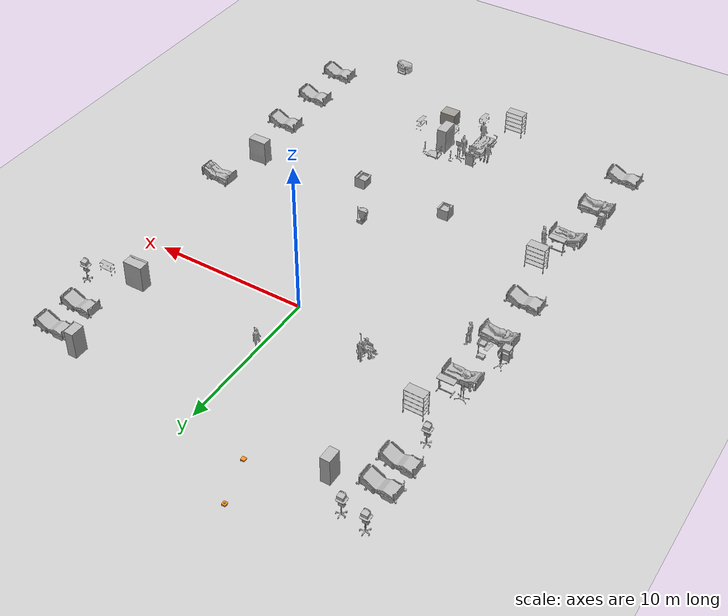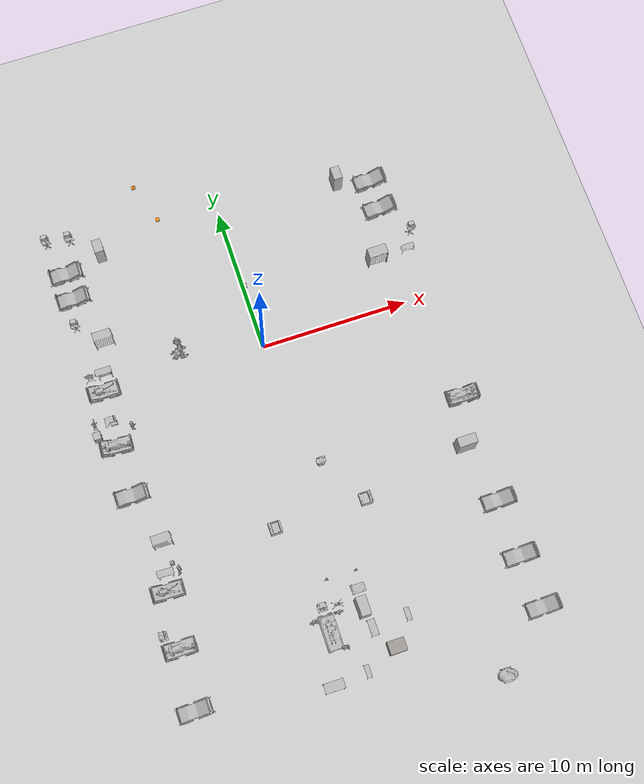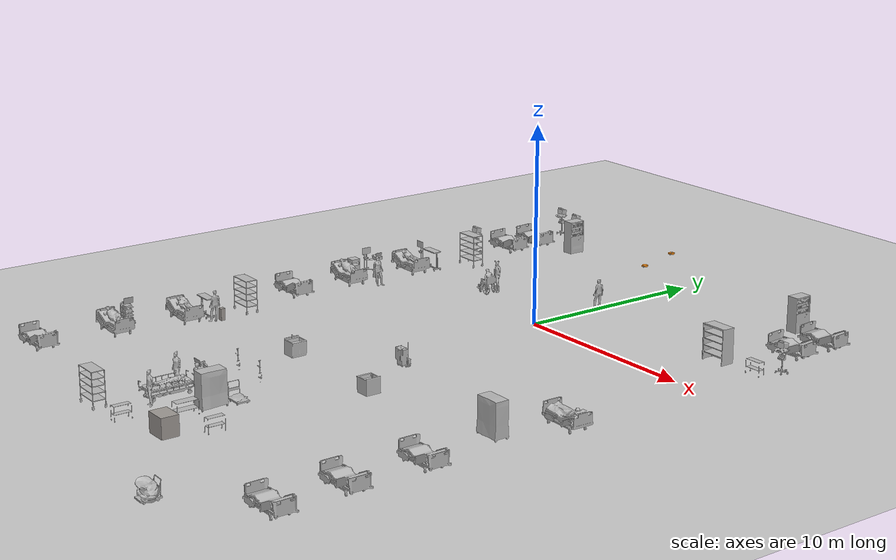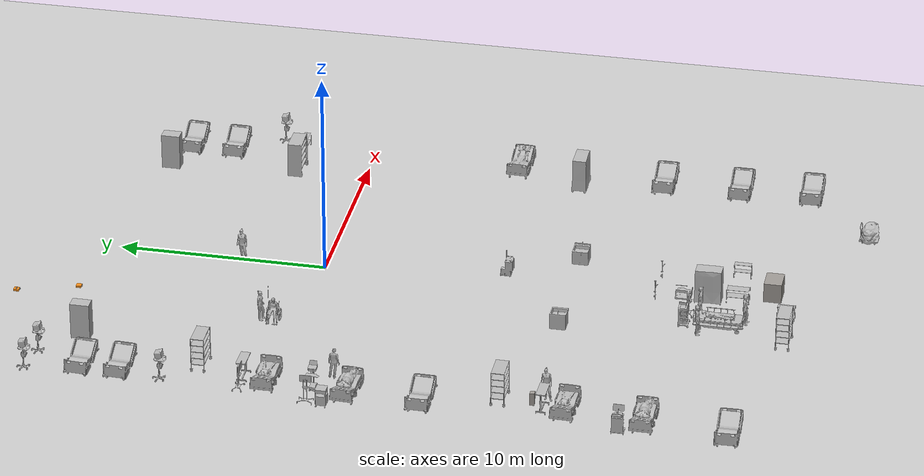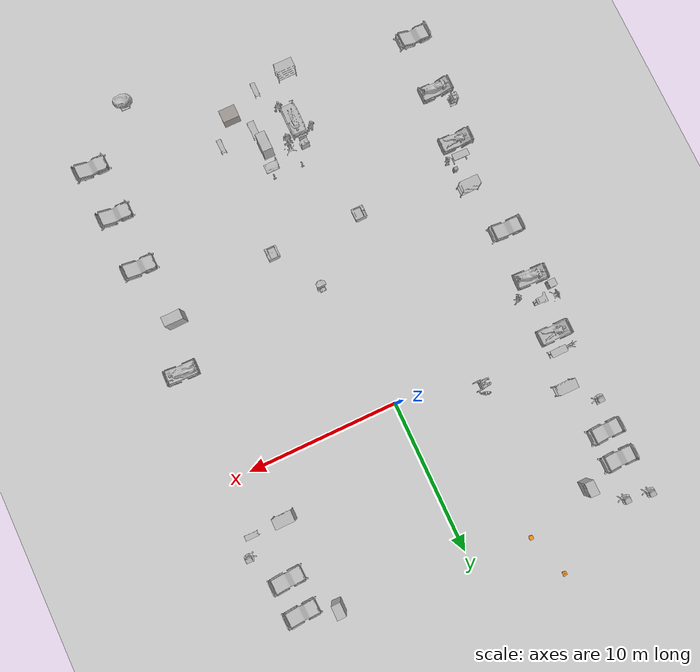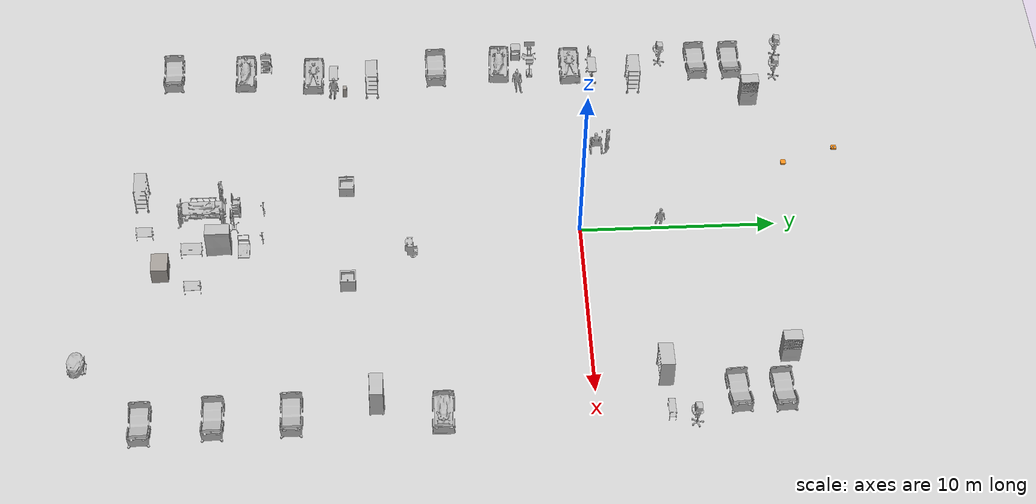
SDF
<sdf version="1.6">
 <world name="world">
  <plugin filename="libgazebo_ros_state.so" name="gazebo_ros_state">
   <ros><namespace>/gazebo</namespace></ros>
  </plugin>
  <gravity>0 0 -9.8</gravity>
  <scene><ambient>0.6 0.6 0.6 1</ambient><background>0.4 0.4 0.4 1</background><shadows>false</shadows></scene>
  <include><uri>model://sun</uri></include>
  <include><uri>model://ground_plane</uri><pose>0 0 -0.1 0 -0 0</pose></include>
  <model name="CGMClassic_1">
   <include>
    <uri>model://CGMClassic</uri>
    <static>true</static>
    <pose>11.1777 -18.4129 0 0 0 -3.13719</pose>
   </include>
  </model>
  <model name="CGMClassic_2">
   <include>
    <uri>model://CGMClassic</uri>
    <static>true</static>
    <pose>11.1179 -14.6493 0 0 0 -3.13599</pose>
   </include>
  </model>
  <model name="Scrubs_1">
   <include><uri>model://Scrubs</uri><static>true</static><pose>-9.61916 -12.5112 0 0 0 -3.12353</pose></include>
  </model>
  <model name="Scrubs_2">
   <include><uri>model://Scrubs</uri><static>true</static><pose>0.054597 4.05849 0 0 -0 3.12413</pose></include>
  </model>
  <model name="PatientWheelChair_1">
   <include>
    <uri>model://PatientWheelChair</uri>
    <static>true</static>
    <pose>-5.46091 1.23577 0 0 0 -1.54828</pose>
   </include>
  </model>
  <model name="Scrubs_3">
   <include><uri>model://Scrubs</uri><static>true</static><pose>-5.38513 1.82526 0 0 0 -1.63757</pose></include>
  </model>
  <model name="SurgicalTrolley_1">
   <include>
    <uri>model://SurgicalTrolley</uri>
    <static>true</static>
    <pose>11.4301 3.56328 0 0 -0 0</pose>
   </include>
  </model>
  <model name="CGMClassic_3">
   <include>
    <uri>model://CGMClassic</uri>
    <static>true</static>
    <pose>-11.2304 -21.1134 0 0 0 -3.11834</pose>
   </include>
  </model>
  <model name="MopCart3_1">
   <include>
    <uri>model://MopCart3</uri>
    <static>true</static>
    <pose>1.07736 -8.59036 -6.7e-05 0 1e-06 0</pose>
   </include>
  </model>
  <model name="ElderLadyPatient_1">
   <include>
    <uri>model://ElderLadyPatient</uri>
    <static>true</static>
    <pose>-10.9972 0.231354 0.001654 0 -0 0</pose>
   </include>
  </model>
  <model name="ElderLadyPatient_2">
   <include>
    <uri>model://ElderLadyPatient</uri>
    <static>true</static>
    <pose>-10.8133 -13.5925 0.001657 0 -2e-06 -0.025052</pose>
   </include>
  </model>
  <model name="CGMClassic_4">
   <include>
    <uri>model://CGMClassic</uri>
    <static>true</static>
    <pose>-11.0878 -7.00992 0 0 -0 3.1351</pose>
   </include>
  </model>
  <model name="InstrumentCart1_1">
   <include>
    <uri>model://InstrumentCart1</uri>
    <static>true</static>
    <pose>-11.8071 -16.1825 0 0 -0 1.56702</pose>
   </include>
  </model>
  <model name="ElderMalePatient_1">
   <include>
    <uri>model://ElderMalePatient</uri>
    <static>true</static>
    <pose>-11.1165 -17.2377 0.001656 0 3e-06 0</pose>
   </include>
  </model>
  <model name="InstrumentCart2_1">
   <include>
    <uri>model://InstrumentCart2</uri>
    <static>true</static>
    <pose>-12.0906 -1.87329 0.051875 0 -0 1.57773</pose>
   </include>
  </model>
  <model name="InstrumentCart2_2">
   <include>
    <uri>model://InstrumentCart2</uri>
    <static>true</static>
    <pose>-11.5231 1.34237 0 0 -0 0</pose>
   </include>
  </model>
  <model name="CGMClassic_5">
   <include>
    <uri>model://CGMClassic</uri>
    <static>true</static>
    <pose>-11.0106 8.9505 -0.008203 -0.035019 -0.000392 3.13388</pose>
   </include>
  </model>
  <model name="CGMClassic_6">
   <include>
    <uri>model://CGMClassic</uri>
    <static>true</static>
    <pose>-11.025 7.10335 0 -0.035021 1.8e-05 -3.13762</pose>
   </include>
  </model>
  <model name="BedTable_1">
   <include>
    <uri>model://BedTable</uri>
    <static>true</static>
    <pose>-10.4759 1.39442 0.001184 0 -3e-06 0</pose>
   </include>
  </model>
  <model name="BedTable_2">
   <include>
    <uri>model://BedTable</uri>
    <static>true</static>
    <pose>-10.5874 -12.5084 0.001189 0 -0 3.11588</pose>
   </include>
  </model>
  <model name="BedsideTable_1">
   <include>
    <uri>model://BedsideTable</uri>
    <static>true</static>
    <pose>-12.1499 -2.63111 0.00018 1e-06 -0 -0.00878</pose>
   </include>
  </model>
  <model name="TrolleyBedPatient_1">
   <include>
    <uri>model://TrolleyBedPatient</uri>
    <static>true</static>
    <pose>-1.83202 -19.2612 0 0 -0 0</pose>
   </include>
  </model>
  <model name="Scrubs_4">
   <include><uri>model://Scrubs</uri><static>true</static><pose>-0.93616 -18.2252 0 0 -0 1.62572</pose></include>
  </model>
  <model name="Shower_1">
   <include><uri>model://Shower</uri><static>true</static><pose>-1.07422 -16.1332 0 0 -0 0</pose></include>
  </model>
  <model name="Shower_2">
   <include><uri>model://Shower</uri><static>true</static><pose>0.853327 -16.1492 0 0 -0 0</pose></include>
  </model>
  <model name="SurgicalTrolley_2">
   <include>
    <uri>model://SurgicalTrolley</uri>
    <static>true</static>
    <pose>-0.411421 -22.2085 0 0 0 -1.58175</pose>
   </include>
  </model>
  <model name="SurgicalTrolley_3">
   <include>
    <uri>model://SurgicalTrolley</uri>
    <static>true</static>
    <pose>3.11747 -19.6565 0 0 -0 1.57031</pose>
   </include>
  </model>
  <model name="SurgicalTrolleyMed_1">
   <include>
    <uri>model://SurgicalTrolleyMed</uri>
    <static>true</static>
    <pose>0.770804 -19.7749 0 0 0 -1.56798</pose>
   </include>
  </model>
  <model name="Scrubs_5">
   <include>
    <uri>model://Scrubs</uri>
    <static>true</static>
    <pose>-2.66657 -18.3733 0 -0.002221 -0.006608 -1.24025</pose>
   </include>
  </model>
  <model name="InstrumentCart1_2">
   <include>
    <uri>model://InstrumentCart1</uri>
    <static>true</static>
    <pose>-11.8071 -16.1825 0 0 -0 1.56702</pose>
   </include>
  </model>
  <model name="InstrumentCart2_3">
   <include>
    <uri>model://InstrumentCart2</uri>
    <static>true</static>
    <pose>-0.869537 -17.7436 0 0 0 -0.002595</pose>
   </include>
  </model>
  <model name="StorageRackCovered_1">
   <include>
    <uri>model://StorageRackCovered</uri>
    <static>true</static>
    <pose>0.546476 -18.3985 -0 0 -0 1.56584</pose>
   </include>
  </model>
  <model name="StorageRack_2">
   <include>
    <uri>model://StorageRack</uri>
    <static>true</static>
    <pose>-2.69866 -22.4178 -8e-06 0 4e-06 0</pose>
   </include>
  </model>
  <model name="KitchenSink_1">
   <include>
    <uri>model://KitchenSink</uri>
    <static>true</static>
    <pose>3.06236 -11.8809 -0.001614 0 -0 3.1391</pose>
   </include>
  </model>
  <model name="KitchenSink_2">
   <include>
    <uri>model://KitchenSink</uri>
    <static>true</static>
    <pose>-3.09305 -11.8988 -0.001609 0 -0 0</pose>
   </include>
  </model>
  <model name="CGMClassic_7">
   <include>
    <uri>model://CGMClassic</uri>
    <static>true</static>
    <pose>10.6166 9.06291 -0.008203 -0.03501 0.000885 -3.11285</pose>
   </include>
  </model>
  <model name="CGMClassic_8">
   <include>
    <uri>model://CGMClassic</uri>
    <static>true</static>
    <pose>10.6006 6.90956 -0.008203 -0.035003 0.001133 -3.10576</pose>
   </include>
  </model>
  <model name="ParkingTrolleyMin_1">
   <include>
    <uri>model://ParkingTrolleyMin</uri>
    <static>true</static>
    <pose>0.715846 -17.1496 -0.000121 -1e-06 -0 0</pose>
   </include>
  </model>
  <model name="Scrubs_6">
   <include><uri>model://Scrubs</uri><static>true</static><pose>-1.29468 -20.4093 0 0 0 -1.51066</pose></include>
  </model>
  <model name="MalePatientBed_1">
   <include>
    <uri>model://MalePatientBed</uri>
    <static>true</static>
    <pose>11.3771 -7.38891 0.001658 -1e-06 1e-06 3.11598</pose>
   </include>
  </model>
  <model name="CGMClassic_9">
   <include>
    <uri>model://CGMClassic</uri>
    <static>true</static>
    <pose>11.3613 -21.8867 0 0 0 -3.12292</pose>
   </include>
  </model>
  <model name="StorageRackCoverOpen_1">
   <include>
    <uri>model://StorageRackCoverOpen</uri>
    <static>true</static>
    <pose>9.15016 3.44263 -9e-06 1e-06 2e-06 0</pose>
   </include>
  </model>
  <model name="StorageRack_3">
   <include><uri>model://StorageRack</uri><static>true</static><pose>-10.1178 -10.4694 -0 0 -0 0</pose></include>
  </model>
  <model name="StorageRack_4">
   <include>
    <uri>model://StorageRack</uri>
    <static>true</static>
    <pose>-9.91557 3.5644 -9e-06 1e-06 1e-06 -0.000273</pose>
   </include>
  </model>
  <model name="StorageRackCovered_2">
   <include>
    <uri>model://StorageRackCovered</uri>
    <static>true</static>
    <pose>10.294 -10.577 -7e-06 3e-06 -0 3.13389</pose>
   </include>
  </model>
  <model name="InstrumentCart1_3">
   <include>
    <uri>model://InstrumentCart1</uri>
    <static>true</static>
    <pose>-1.83539 -17.5879 0 0 -0 0</pose>
   </include>
  </model>
  <model name="ParkingTrolleyMax_1">
   <include>
    <uri>model://ParkingTrolleyMax</uri>
    <static>true</static>
    <pose>7.71054 -25.1326 -0.000121 1e-06 -0 -1.59536</pose>
   </include>
  </model>
  <model name="ElderMalePatient_2">
   <include>
    <uri>model://ElderMalePatient</uri>
    <static>true</static>
    <pose>-11.2471 -3.5813 0.001656 0 -0 -0.054192</pose>
   </include>
  </model>
  <model name="XRayMachine_1">
   <include><uri>model://XRayMachine</uri><static>true</static><pose>1.79424 -21.3329 0 0 -0 0</pose></include>
  </model>
  <model name="BloodPressureMonitor_1">
   <include>
    <uri>model://BloodPressureMonitor</uri>
    <static>true</static>
    <pose>-9.96258 -11.9361 0 0 -0 0</pose>
   </include>
  </model>
  <model name="BMWCart_1">
   <include><uri>model://BMWCart</uri><static>true</static><pose>-10.931 -1.9483 0 0 -0 0</pose></include>
  </model>
  <model name="Scrubs_7">
   <include><uri>model://Scrubs</uri><static>true</static><pose>-9.75875 -2.67552 0 0 -0 0</pose></include>
  </model>
  <model name="BPCart_1">
   <include>
    <uri>model://BPCart</uri>
    <static>true</static>
    <pose>-10.1788 11.173 0.003446 1e-06 -0 0.003096</pose>
   </include>
  </model>
  <model name="BPCart_2">
   <include><uri>model://BPCart</uri><static>true</static><pose>12.0072 4.64765 0 0 -0 0</pose></include>
  </model>
  <model name="BPCart_3">
   <include><uri>model://BPCart</uri><static>true</static><pose>-11.7236 11.4294 0 0 -0 0</pose></include>
  </model>
  <model name="BPCart_4">
   <include>
    <uri>model://BPCart</uri>
    <static>true</static>
    <pose>-11.4703 5.05999 0.003446 1e-06 -0 0.003096</pose>
   </include>
  </model>
  <model name="VendingMachine_1">
   <include>
    <uri>model://VendingMachine</uri>
    <static>true</static>
    <pose>-8.45694 9.63064 0 0 -0 0</pose>
   </include>
  </model>
  <model name="VendingMachine_2">
   <include>
    <uri>model://VendingMachine</uri>
    <static>true</static>
    <pose>8.35378 9.64852 -3e-06 -6e-06 0 0</pose>
   </include>
  </model>
  <physics type="ode">
   <real_time_update_rate>1000.0</real_time_update_rate>
   <max_step_size>0.001</max_step_size>
   <real_time_factor>1</real_time_factor>
   <ode>
    <solver>
     <type>quick</type>
     <iters>150</iters>
     <precon_iters>0</precon_iters>
     <sor>1.400000</sor>
     <use_dynamic_moi_rescaling>1</use_dynamic_moi_rescaling>
    </solver>
    <constraints>
     <cfm>0.00001</cfm>
     <erp>0.2</erp>
     <contact_max_correcting_vel>2000.000000</contact_max_correcting_vel>
     <contact_surface_layer>0.01000</contact_surface_layer>
    </constraints>
   </ode>
  </physics>
  <model name="turtlebot3_waffle">
   <pose>-4.9 13.8 0.01 0.0 0.0 0.0</pose>
   <link name="base_footprint"/>
   <link name="base_link">
    <inertial>
     <pose>-0.064 0 0.048 0 0 0</pose>
     <inertia>
      <ixx>0.001</ixx>
      <ixy>0.000</ixy>
      <ixz>0.000</ixz>
      <iyy>0.001</iyy>
      <iyz>0.000</iyz>
      <izz>0.001</izz>
     </inertia>
     <mass>1.0</mass>
    </inertial>
    <collision name="base_collision">
     <pose>-0.064 0 0.048 0 0 0</pose>
     <geometry><box><size>0.265 0.265 0.089</size></box></geometry>
    </collision>
    <visual name="base_visual">
     <pose>-0.064 0 0 0 0 0</pose>
     <geometry>
      <mesh><uri>model://turtlebot3_common/meshes/waffle_base.dae</uri><scale>0.001 0.001 0.001</scale></mesh>
     </geometry>
     <material>
      <script><uri>file://media/materials/scripts/gazebo.material</uri><name>Gazebo/Orange</name></script>
     </material>
    </visual>
   </link>
   <link name="imu_link">
    <sensor name="tb3_imu" type="imu">
     <always_on>true</always_on>
     <update_rate>100</update_rate>
     <imu>
      <angular_velocity>
       <x><noise type="gaussian"><mean>0.0</mean><stddev>2e-4</stddev></noise></x>
       <y><noise type="gaussian"><mean>0.0</mean><stddev>2e-4</stddev></noise></y>
       <z><noise type="gaussian"><mean>0.0</mean><stddev>2e-4</stddev></noise></z>
      </angular_velocity>
      <linear_acceleration>
       <x><noise type="gaussian"><mean>0.0</mean><stddev>1.7e-2</stddev></noise></x>
       <y><noise type="gaussian"><mean>0.0</mean><stddev>1.7e-2</stddev></noise></y>
       <z><noise type="gaussian"><mean>0.0</mean><stddev>1.7e-2</stddev></noise></z>
      </linear_acceleration>
     </imu>
     <plugin name="turtlebot3_imu" filename="libgazebo_ros_imu_sensor.so">
      <initial_orientation_as_reference>false</initial_orientation_as_reference>
      <ros><namespace>/tb3</namespace><remapping>~/out:=imu</remapping></ros>
     </plugin>
    </sensor>
   </link>
   <link name="base_scan">
    <inertial>
     <pose>-0.052 0 0.111 0 0 0</pose>
     <inertia>
      <ixx>0.001</ixx>
      <ixy>0.000</ixy>
      <ixz>0.000</ixz>
      <iyy>0.001</iyy>
      <iyz>0.000</iyz>
      <izz>0.001</izz>
     </inertia>
     <mass>0.125</mass>
    </inertial>
    <collision name="lidar_sensor_collision">
     <pose>-0.052 0 0.111 0 0 0</pose>
     <geometry><cylinder><radius>0.0508</radius><length>0.055</length></cylinder></geometry>
    </collision>
    <visual name="lidar_sensor_visual">
     <pose>-0.064 0 0.121 0 0 0</pose>
     <geometry>
      <mesh><uri>model://turtlebot3_common/meshes/lds.dae</uri><scale>0.001 0.001 0.001</scale></mesh>
     </geometry>
    </visual>
    <sensor name="hls_lfcd_lds" type="ray">
     <always_on>true</always_on>
     <visualize>false</visualize>
     <pose>-0.064 0 0.121 0 0 0</pose>
     <update_rate>5</update_rate>
     <ray>
      <scan>
       <horizontal>
        <samples>360</samples>
        <resolution>1.000000</resolution>
        <min_angle>0.000000</min_angle>
        <max_angle>6.280000</max_angle>
       </horizontal>
      </scan>
      <range><min>0.120000</min><max>10.0</max><resolution>0.015000</resolution></range>
      <noise><type>gaussian</type><mean>0.0</mean><stddev>0.01</stddev></noise>
     </ray>
     <plugin name="turtlebot3_laserscan" filename="libgazebo_ros_ray_sensor.so">
      <ros><remapping>~/out:=scan</remapping></ros>
      <output_type>sensor_msgs/LaserScan</output_type>
      <frame_name>base_scan</frame_name>
     </plugin>
    </sensor>
   </link>
   <link name="wheel_left_link">
    <inertial>
     <pose>0.0 0.144 0.023 -1.57 0 0</pose>
     <inertia>
      <ixx>0.001</ixx>
      <ixy>0.000</ixy>
      <ixz>0.000</ixz>
      <iyy>0.001</iyy>
      <iyz>0.000</iyz>
      <izz>0.001</izz>
     </inertia>
     <mass>0.1</mass>
    </inertial>
    <collision name="wheel_left_collision">
     <pose>0.0 0.144 0.023 -1.57 0 0</pose>
     <geometry><cylinder><radius>0.033</radius><length>0.018</length></cylinder></geometry>
     <surface>
      <friction>
       <ode><mu>100000.0</mu><mu2>100000.0</mu2><fdir1>0 0 0</fdir1><slip1>0.0</slip1><slip2>0.0</slip2></ode>
      </friction>
      <contact>
       <ode>
        <soft_cfm>0</soft_cfm>
        <soft_erp>0.2</soft_erp>
        <kp>1e+5</kp>
        <kd>1</kd>
        <max_vel>0.01</max_vel>
        <min_depth>0.001</min_depth>
       </ode>
      </contact>
     </surface>
    </collision>
    <visual name="wheel_left_visual">
     <pose>0.0 0.144 0.023 0 0 0</pose>
     <geometry>
      <mesh><uri>model://turtlebot3_common/meshes/tire.dae</uri><scale>0.001 0.001 0.001</scale></mesh>
     </geometry>
    </visual>
   </link>
   <link name="wheel_right_link">
    <inertial>
     <pose>0.0 -0.144 0.023 -1.57 0 0</pose>
     <inertia>
      <ixx>0.001</ixx>
      <ixy>0.000</ixy>
      <ixz>0.000</ixz>
      <iyy>0.001</iyy>
      <iyz>0.000</iyz>
      <izz>0.001</izz>
     </inertia>
     <mass>0.1</mass>
    </inertial>
    <collision name="wheel_right_collision">
     <pose>0.0 -0.144 0.023 -1.57 0 0</pose>
     <geometry><cylinder><radius>0.033</radius><length>0.018</length></cylinder></geometry>
     <surface>
      <friction>
       <ode><mu>100000.0</mu><mu2>100000.0</mu2><fdir1>0 0 0</fdir1><slip1>0.0</slip1><slip2>0.0</slip2></ode>
      </friction>
      <contact>
       <ode>
        <soft_cfm>0</soft_cfm>
        <soft_erp>0.2</soft_erp>
        <kp>1e+5</kp>
        <kd>1</kd>
        <max_vel>0.01</max_vel>
        <min_depth>0.001</min_depth>
       </ode>
      </contact>
     </surface>
    </collision>
    <visual name="wheel_right_visual">
     <pose>0.0 -0.144 0.023 0 0 0</pose>
     <geometry>
      <mesh><uri>model://turtlebot3_common/meshes/tire.dae</uri><scale>0.001 0.001 0.001</scale></mesh>
     </geometry>
    </visual>
   </link>
   <link name="caster_back_right_link">
    <pose>-0.177 -0.064 -0.004 0 0 0</pose>
    <inertial>
     <mass>0.001</mass>
     <inertia>
      <ixx>0.00001</ixx>
      <ixy>0.000</ixy>
      <ixz>0.000</ixz>
      <iyy>0.00001</iyy>
      <iyz>0.000</iyz>
      <izz>0.00001</izz>
     </inertia>
    </inertial>
    <collision name="collision">
     <geometry><sphere><radius>0.005000</radius></sphere></geometry>
     <surface>
      <contact>
       <ode>
        <soft_cfm>0</soft_cfm>
        <soft_erp>0.2</soft_erp>
        <kp>1e+5</kp>
        <kd>1</kd>
        <max_vel>0.01</max_vel>
        <min_depth>0.001</min_depth>
       </ode>
      </contact>
     </surface>
    </collision>
   </link>
   <link name="caster_back_left_link">
    <pose>-0.177 0.064 -0.004 0 0 0</pose>
    <inertial>
     <mass>0.001</mass>
     <inertia>
      <ixx>0.00001</ixx>
      <ixy>0.000</ixy>
      <ixz>0.000</ixz>
      <iyy>0.00001</iyy>
      <iyz>0.000</iyz>
      <izz>0.00001</izz>
     </inertia>
    </inertial>
    <collision name="collision">
     <geometry><sphere><radius>0.005000</radius></sphere></geometry>
     <surface>
      <contact>
       <ode>
        <soft_cfm>0</soft_cfm>
        <soft_erp>0.2</soft_erp>
        <kp>1e+5</kp>
        <kd>1</kd>
        <max_vel>0.01</max_vel>
        <min_depth>0.001</min_depth>
       </ode>
      </contact>
     </surface>
    </collision>
   </link>
   <link name="camera_link">
    <inertial>
     <pose>0.069 -0.047 0.107 0 0 0</pose>
     <inertia>
      <ixx>0.001</ixx>
      <ixy>0.000</ixy>
      <ixz>0.000</ixz>
      <iyy>0.001</iyy>
      <iyz>0.000</iyz>
      <izz>0.001</izz>
     </inertia>
     <mass>0.035</mass>
    </inertial>
    <pose>0.069 -0.047 0.107 0 0 0</pose>
    <sensor name="intel_realsense_r200_depth" type="depth">
     <always_on>1</always_on>
     <update_rate>5</update_rate>
     <pose>0.064 -0.047 0.107 0 0 0</pose>
     <camera name="realsense_depth_camera"/>
     <plugin name="intel_realsense_r200_depth_driver" filename="libgazebo_ros_camera.so">
      <camera_name>intel_realsense_r200_depth</camera_name>
      <frame_name>camera_depth_frame</frame_name>
      <hack_baseline>0.07</hack_baseline>
      <min_depth>0.001</min_depth>
      <max_depth>5.0</max_depth>
     </plugin>
    </sensor>
    <collision name="collision">
     <pose>0 0.047 -0.005 0 0 0</pose>
     <geometry><box><size>0.008 0.130 0.022</size></box></geometry>
    </collision>
    <pose>0.069 -0.047 0.107 0 0 0</pose>
   </link>
   <joint name="base_joint" type="fixed">
    <parent>base_footprint</parent>
    <child>base_link</child>
    <pose>0.0 0.0 0.010 0 0 0</pose>
   </joint>
   <joint name="wheel_left_joint" type="revolute">
    <parent>base_link</parent>
    <child>wheel_left_link</child>
    <pose>0.0 0.144 0.023 -1.57 0 0</pose>
    <axis><xyz>0 0 1</xyz></axis>
   </joint>
   <joint name="wheel_right_joint" type="revolute">
    <parent>base_link</parent>
    <child>wheel_right_link</child>
    <pose>0.0 -0.144 0.023 -1.57 0 0</pose>
    <axis><xyz>0 0 1</xyz></axis>
   </joint>
   <joint name="caster_back_right_joint" type="ball">
    <parent>base_link</parent>
    <child>caster_back_right_link</child>
   </joint>
   <joint name="caster_back_left_joint" type="ball">
    <parent>base_link</parent>
    <child>caster_back_left_link</child>
   </joint>
   <joint name="lidar_joint" type="fixed">
    <parent>base_link</parent>
    <child>base_scan</child>
    <pose>-0.064 0 0.121 0 0 0</pose>
    <axis><xyz>0 0 1</xyz></axis>
   </joint>
   <joint name="camera_joint" type="fixed">
    <parent>base_link</parent>
    <child>camera_link</child>
    <pose>0.064 -0.065 0.094 0 0 0</pose>
    <axis><xyz>0 0 1</xyz></axis>
   </joint>
   <joint name="camera_rgb_joint" type="fixed">
    <parent>camera_link</parent>
    <child>camera_rgb_frame</child>
    <pose>0.005 0.018 0.013 0 0 0</pose>
    <axis><xyz>0 0 1</xyz></axis>
   </joint>
   <plugin name="turtlebot3_diff_drive" filename="libgazebo_ros_diff_drive.so">
    <ros><namespace>/tb3</namespace></ros>
    <update_rate>40</update_rate>
    <left_joint>wheel_left_joint</left_joint>
    <right_joint>wheel_right_joint</right_joint>
    <wheel_separation>0.287</wheel_separation>
    <wheel_diameter>0.066</wheel_diameter>
    <max_wheel_torque>20</max_wheel_torque>
    <max_wheel_acceleration>30.0</max_wheel_acceleration>
    <command_topic>cmd_vel</command_topic>
    <publish_odom>true</publish_odom>
    <publish_odom_tf>true</publish_odom_tf>
    <publish_wheel_tf>false</publish_wheel_tf>
    <odometry_topic>odom</odometry_topic>
    <odometry_frame>odom</odometry_frame>
    <robot_base_frame>base_footprint</robot_base_frame>
   </plugin>
   <plugin name="turtlebot3_joint_state" filename="libgazebo_ros_joint_state_publisher.so">
    <ros><namespace>/tb3</namespace><remapping>~/out:=joint_states</remapping></ros>
    <update_rate>30</update_rate>
    <joint_name>wheel_left_joint</joint_name>
    <joint_name>wheel_right_joint</joint_name>
   </plugin>
  </model>
  <model name="turtlebot3_waffle_adv">
   <pose>-4.0 11.0 0.01 0.0 0.0 0.0</pose>
   <link name="base_footprint_adv"/>
   <link name="base_link_adv">
    <inertial>
     <pose>-0.064 0 0.048 0 0 0</pose>
     <inertia>
      <ixx>0.001</ixx>
      <ixy>0.000</ixy>
      <ixz>0.000</ixz>
      <iyy>0.001</iyy>
      <iyz>0.000</iyz>
      <izz>0.001</izz>
     </inertia>
     <mass>1.0</mass>
    </inertial>
    <collision name="base_collision_adv">
     <pose>-0.064 0 0.048 0 0 0</pose>
     <geometry><box><size>0.265 0.265 0.089</size></box></geometry>
    </collision>
    <visual name="base_visual_adv">
     <pose>-0.064 0 0 0 0 0</pose>
     <geometry>
      <mesh><uri>model://turtlebot3_common/meshes/waffle_base.dae</uri><scale>0.001 0.001 0.001</scale></mesh>
     </geometry>
     <material>
      <script><uri>file://media/materials/scripts/gazebo.material</uri><name>Gazebo/Orange</name></script>
     </material>
    </visual>
   </link>
   <link name="imu_link_adv">
    <sensor name="tb3_imu_adv" type="imu">
     <always_on>true</always_on>
     <update_rate>100</update_rate>
     <imu>
      <angular_velocity>
       <x><noise type="gaussian"><mean>0.0</mean><stddev>2e-4</stddev></noise></x>
       <y><noise type="gaussian"><mean>0.0</mean><stddev>2e-4</stddev></noise></y>
       <z><noise type="gaussian"><mean>0.0</mean><stddev>2e-4</stddev></noise></z>
      </angular_velocity>
      <linear_acceleration>
       <x><noise type="gaussian"><mean>0.0</mean><stddev>1.7e-2</stddev></noise></x>
       <y><noise type="gaussian"><mean>0.0</mean><stddev>1.7e-2</stddev></noise></y>
       <z><noise type="gaussian"><mean>0.0</mean><stddev>1.7e-2</stddev></noise></z>
      </linear_acceleration>
     </imu>
     <plugin name="turtlebot3_imu_adv" filename="libgazebo_ros_imu_sensor.so">
      <initial_orientation_as_reference>false</initial_orientation_as_reference>
      <ros><namespace>/tb3_adv</namespace><remapping>~/out:=imu_adv</remapping></ros>
     </plugin>
    </sensor>
   </link>
   <link name="wheel_left_link_adv">
    <inertial>
     <pose>0.0 0.144 0.023 -1.57 0 0</pose>
     <inertia>
      <ixx>0.001</ixx>
      <ixy>0.000</ixy>
      <ixz>0.000</ixz>
      <iyy>0.001</iyy>
      <iyz>0.000</iyz>
      <izz>0.001</izz>
     </inertia>
     <mass>0.1</mass>
    </inertial>
    <collision name="wheel_left_collision_adv">
     <pose>0.0 0.144 0.023 -1.57 0 0</pose>
     <geometry><cylinder><radius>0.033</radius><length>0.018</length></cylinder></geometry>
     <surface>
      <friction>
       <ode><mu>100000.0</mu><mu2>100000.0</mu2><fdir1>0 0 0</fdir1><slip1>0.0</slip1><slip2>0.0</slip2></ode>
      </friction>
      <contact>
       <ode>
        <soft_cfm>0</soft_cfm>
        <soft_erp>0.2</soft_erp>
        <kp>1e+5</kp>
        <kd>1</kd>
        <max_vel>0.01</max_vel>
        <min_depth>0.001</min_depth>
       </ode>
      </contact>
     </surface>
    </collision>
    <visual name="wheel_left_visual_adv">
     <pose>0.0 0.144 0.023 0 0 0</pose>
     <geometry>
      <mesh><uri>model://turtlebot3_common/meshes/tire.dae</uri><scale>0.001 0.001 0.001</scale></mesh>
     </geometry>
    </visual>
   </link>
   <link name="wheel_right_link_adv">
    <inertial>
     <pose>0.0 -0.144 0.023 -1.57 0 0</pose>
     <inertia>
      <ixx>0.001</ixx>
      <ixy>0.000</ixy>
      <ixz>0.000</ixz>
      <iyy>0.001</iyy>
      <iyz>0.000</iyz>
      <izz>0.001</izz>
     </inertia>
     <mass>0.1</mass>
    </inertial>
    <collision name="wheel_right_collision_adv">
     <pose>0.0 -0.144 0.023 -1.57 0 0</pose>
     <geometry><cylinder><radius>0.033</radius><length>0.018</length></cylinder></geometry>
     <surface>
      <friction>
       <ode><mu>100000.0</mu><mu2>100000.0</mu2><fdir1>0 0 0</fdir1><slip1>0.0</slip1><slip2>0.0</slip2></ode>
      </friction>
      <contact>
       <ode>
        <soft_cfm>0</soft_cfm>
        <soft_erp>0.2</soft_erp>
        <kp>1e+5</kp>
        <kd>1</kd>
        <max_vel>0.01</max_vel>
        <min_depth>0.001</min_depth>
       </ode>
      </contact>
     </surface>
    </collision>
    <visual name="wheel_right_visual_adv">
     <pose>0.0 -0.144 0.023 0 0 0</pose>
     <geometry>
      <mesh><uri>model://turtlebot3_common/meshes/tire.dae</uri><scale>0.001 0.001 0.001</scale></mesh>
     </geometry>
    </visual>
   </link>
   <link name="caster_back_right_link_adv">
    <pose>-0.177 -0.064 -0.004 0 0 0</pose>
    <inertial>
     <mass>0.001</mass>
     <inertia>
      <ixx>0.00001</ixx>
      <ixy>0.000</ixy>
      <ixz>0.000</ixz>
      <iyy>0.00001</iyy>
      <iyz>0.000</iyz>
      <izz>0.00001</izz>
     </inertia>
    </inertial>
    <collision name="collision_adv">
     <geometry><sphere><radius>0.005000</radius></sphere></geometry>
     <surface>
      <contact>
       <ode>
        <soft_cfm>0</soft_cfm>
        <soft_erp>0.2</soft_erp>
        <kp>1e+5</kp>
        <kd>1</kd>
        <max_vel>0.01</max_vel>
        <min_depth>0.001</min_depth>
       </ode>
      </contact>
     </surface>
    </collision>
   </link>
   <link name="caster_back_left_link_adv">
    <pose>-0.177 0.064 -0.004 0 0 0</pose>
    <inertial>
     <mass>0.001</mass>
     <inertia>
      <ixx>0.00001</ixx>
      <ixy>0.000</ixy>
      <ixz>0.000</ixz>
      <iyy>0.00001</iyy>
      <iyz>0.000</iyz>
      <izz>0.00001</izz>
     </inertia>
    </inertial>
    <collision name="collision_adv">
     <geometry><sphere><radius>0.005000</radius></sphere></geometry>
     <surface>
      <contact>
       <ode>
        <soft_cfm>0</soft_cfm>
        <soft_erp>0.2</soft_erp>
        <kp>1e+5</kp>
        <kd>1</kd>
        <max_vel>0.01</max_vel>
        <min_depth>0.001</min_depth>
       </ode>
      </contact>
     </surface>
    </collision>
   </link>
   <joint name="base_joint_adv" type="fixed">
    <parent>base_footprint_adv</parent>
    <child>base_link_adv</child>
    <pose>0.0 0.0 0.010 0 0 0</pose>
   </joint>
   <joint name="wheel_left_joint_adv" type="revolute">
    <parent>base_link_adv</parent>
    <child>wheel_left_link_adv</child>
    <pose>0.0 0.144 0.023 -1.57 0 0</pose>
    <axis><xyz>0 0 1</xyz></axis>
   </joint>
   <joint name="wheel_right_joint_adv" type="revolute">
    <parent>base_link_adv</parent>
    <child>wheel_right_link_adv</child>
    <pose>0.0 -0.144 0.023 -1.57 0 0</pose>
    <axis><xyz>0 0 1</xyz></axis>
   </joint>
   <joint name="caster_back_right_joint_adv" type="ball">
    <parent>base_link_adv</parent>
    <child>caster_back_right_link_adv</child>
   </joint>
   <joint name="caster_back_left_joint_adv" type="ball">
    <parent>base_link_adv</parent>
    <child>caster_back_left_link_adv</child>
   </joint>
   <plugin name="turtlebot3_diff_drive_adv" filename="libgazebo_ros_diff_drive.so">
    <ros><namespace>/tb3_adv</namespace></ros>
    <update_rate>40</update_rate>
    <left_joint>wheel_left_joint_adv</left_joint>
    <right_joint>wheel_right_joint_adv</right_joint>
    <wheel_separation>0.287</wheel_separation>
    <wheel_diameter>0.066</wheel_diameter>
    <max_wheel_torque>20</max_wheel_torque>
    <max_wheel_acceleration>30.0</max_wheel_acceleration>
    <command_topic>cmd_vel</command_topic>
    <publish_odom>true</publish_odom>
    <publish_odom_tf>true</publish_odom_tf>
    <publish_wheel_tf>false</publish_wheel_tf>
    <odometry_topic>odom</odometry_topic>
    <odometry_frame>odom</odometry_frame>
    <robot_base_frame>base_footprint_adv</robot_base_frame>
   </plugin>
   <plugin name="turtlebot3_joint_state_adv" filename="libgazebo_ros_joint_state_publisher.so">
    <ros><namespace>/tb3_adv</namespace><remapping>~/out:=joint_states</remapping></ros>
    <update_rate>30</update_rate>
    <joint_name>wheel_left_joint_adv</joint_name>
    <joint_name>wheel_right_joint_adv</joint_name>
   </plugin>
  </model>
 </world>
</sdf>

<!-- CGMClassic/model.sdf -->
<sdf version="1.6">
  <model name="CGMClassic">
   <static>true</static>
    <link name="body">
      <pose>0 0 0 0 0 0</pose>

      <visual name="visual">
        <geometry>
          <mesh>
            <uri>model://CGMClassic/meshes/CGMClassic.obj</uri>
            <scale>0.01 0.01 0.01</scale>
          </mesh>
        </geometry>
      </visual>

      <collision name="collision">
        <geometry>
          <mesh>
            <uri>model://CGMClassic/meshes/CGMClassic.obj</uri>
            <scale>0.01 0.01 0.01</scale>
          </mesh>
        </geometry>
      </collision>

    </link>
  </model>
</sdf>

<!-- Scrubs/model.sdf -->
<sdf version="1.6">
  <model name='Scrubs'>
   <static>true</static>
    <link name="body">
      <pose>0 0 0 0 0 0</pose>

      <visual name="visual">
        <geometry>
          <mesh>
            <uri>model://Scrubs/meshes/scrubs.obj</uri>
          </mesh>
        </geometry>
      </visual>

      <collision name="collision">
        <geometry>
          <mesh>
            <uri>model://Scrubs/meshes/Scrubs_Col.obj</uri>
          </mesh>
        </geometry>
      </collision>

    </link>
  </model>
</sdf>

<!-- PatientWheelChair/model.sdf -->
<sdf version="1.6">
  <model name="PatientWheelChair">
   <static>true</static>
    <link name="body">
      <pose>0 0 0 0 0 0</pose>

      <visual name="visual">
        <geometry>
          <mesh>
            <uri>model://PatientWheelChair/meshes/PatientWheelChair.obj</uri>
          </mesh>
        </geometry>
      </visual>

      <collision name="collision">
        <geometry>
          <mesh>
            <uri>model://PatientWheelChair/meshes/PatientWheelChair_Col.obj</uri>
          </mesh>
        </geometry>
      </collision>

    </link>
  </model>
</sdf>

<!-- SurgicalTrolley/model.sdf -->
<sdf version="1.6">
  <model name='SurgicalTrolley'>
   <static>true</static>
    <link name="body">
      <pose>0 0 0 0 0 0</pose>

      <visual name="visual">
        <geometry>
          <mesh>
            <uri>model://SurgicalTrolley/meshes/trolley.obj</uri>
          </mesh>
        </geometry>
      </visual>

      <collision name="collision">
        <geometry>
          <mesh>
            <uri>model://SurgicalTrolley/meshes/trolley.obj</uri>
          </mesh>
        </geometry>
      </collision>

    </link>
  </model>
</sdf>

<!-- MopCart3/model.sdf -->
<sdf version="1.5">
  <model name="MopCart3">
    <link name="link">
      <pose>0 0 0 0 0 0</pose>

        <visual name="visual">
          <geometry>
            <mesh><uri>model://MopCart3/meshes/MopCart3.obj</uri></mesh>
          </geometry>
        </visual>

        <collision name="collision">
          <geometry>
            <mesh><uri>model://MopCart3/meshes/MopCart3.obj</uri></mesh>
          </geometry>
        </collision>

    </link>
  </model>
</sdf>

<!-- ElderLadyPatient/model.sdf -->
<sdf version="1.6">
  <model name='ElderLadyPatient'>
    <link name="body">
      <pose>0 0 0 0 0 0</pose>

      <visual name="visual">
        <geometry>
          <mesh>
            <uri>model://ElderLadyPatient/meshes/ElderFemale.obj</uri>
          </mesh>
        </geometry>
      </visual>

      <collision name="collision">
        <geometry>
          <mesh>
            <uri>model://ElderLadyPatient/meshes/ElderFemale.obj</uri>
          </mesh>
        </geometry>
      </collision>

    </link>
  </model>
</sdf>

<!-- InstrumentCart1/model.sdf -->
<sdf version="1.6">
  <model name="InstrumentCart1">
   <static>true</static>
    <link name="body">
      <pose>0 0 0 0 0 0</pose>

      <visual name="visual">
        <geometry>
          <mesh>
            <uri>model://InstrumentCart1/meshes/InstrumentCart1.obj</uri>
          </mesh>
        </geometry>
      </visual>

      <collision name="collision">
        <geometry>
          <mesh>
            <uri>model://InstrumentCart1/meshes/InstrumentCart1.obj</uri>
          </mesh>
        </geometry>
      </collision>

    </link>
  </model>
</sdf>

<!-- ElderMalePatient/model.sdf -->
<sdf version="1.5">
  <model name="ElderMalePatient">
    <link name="link">
      <pose>0 0 0 0 0 0</pose>

        <visual name="visual">
          <geometry>
            <mesh><uri>model://ElderMalePatient/meshes/ElderMalePatient.obj</uri></mesh>
          </geometry>
        </visual>

        <collision name="collision">
          <geometry>
            <mesh><uri>model://ElderMalePatient/meshes/ElderMalePatient.obj</uri></mesh>
          </geometry>
        </collision>

    </link>
  </model>
</sdf>

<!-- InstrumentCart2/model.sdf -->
<sdf version="1.6">
  <model name="InstrumentCart2">
   <static>true</static>
    <link name="body">
      <pose>0 0 0 0 0 0</pose>

      <visual name="visual">
        <geometry>
          <mesh>
            <uri>model://InstrumentCart2/meshes/InstrumentCart2.obj</uri>
          </mesh>
        </geometry>
      </visual>

      <collision name="collision">
        <geometry>
          <mesh>
            <uri>model://InstrumentCart2/meshes/InstrumentCart2.obj</uri>
          </mesh>
        </geometry>
      </collision>

    </link>
  </model>
</sdf>

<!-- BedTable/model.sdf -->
<sdf version="1.6">
  <model name='BedTable'>
    <link name="body">
      <pose>0 0 0 0 0 0</pose>

      <visual name="visual">
        <geometry>
          <mesh>
            <uri>model://BedTable/meshes/BedTable.obj</uri>
          </mesh>
        </geometry>
      </visual>

      <collision name="collision">
        <geometry>
          <mesh>
            <uri>model://BedTable/meshes/BedTable_Col.obj</uri>
          </mesh>
        </geometry>
      </collision>

    </link>
  </model>
</sdf>

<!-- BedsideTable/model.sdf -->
<sdf version="1.6">
  <model name='BedsideTable'>
    <link name="body">
      <pose>0 0 0 0 0 -1.5708</pose>

      <visual name="visual">
        <geometry>
          <mesh>
            <uri>model://BedsideTable/meshes/BedsideTable.obj</uri>
          </mesh>
        </geometry>
      </visual>

      <collision name="collision">
        <geometry>
          <mesh>
            <uri>model://BedsideTable/meshes/BedsideTable_Col.obj</uri>
          </mesh>
        </geometry>
      </collision>

    </link>
  </model>
</sdf>

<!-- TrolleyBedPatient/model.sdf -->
<sdf version="1.6">
  <model name="TrolleyBedPatient">
   <static>true</static>
    <link name="body">
      <pose>0 0 0 0 0 0</pose>

      <visual name="visual">
        <geometry>
          <mesh>
            <uri>model://TrolleyBedPatient/meshes/TrolleyBedPatient.obj</uri>
          </mesh>
        </geometry>
      </visual>

      <collision name="collision">
        <geometry>
          <mesh>
            <uri>model://TrolleyBedPatient/meshes/TrolleyBedPatient.obj</uri>
          </mesh>
        </geometry>
      </collision>

    </link>
  </model>
</sdf>

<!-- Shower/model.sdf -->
<sdf version="1.6">
  <model name='Shower'>
<static>true</static>
    <link name="body">
      <pose>0 0 0 0 0 0</pose>

      <visual name="visual">
        <geometry>
          <mesh>
            <uri>model://Shower/meshes/Shower.obj</uri>
            <scale>1 1 1</scale>
          </mesh>
        </geometry>
      </visual>

      <collision name="collision">
        <geometry>
          <mesh>
            <uri>model://Shower/meshes/Shower.obj</uri>
            <scale>1 1 1</scale>
          </mesh>
        </geometry>
      </collision>

    </link>
  </model>
</sdf>

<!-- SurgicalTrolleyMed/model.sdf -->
<sdf version="1.6">
  <model name="SurgicalTrolleyMed">
   <static>true</static>
    <link name="body">
      <pose>0 0 0 0 0 0</pose>

      <visual name="visual">
        <geometry>
          <mesh>
            <uri>model://SurgicalTrolleyMed/meshes/SurgicalTrolleyMed.obj</uri>
          </mesh>
        </geometry>
      </visual>

      <collision name="collision">
        <geometry>
          <mesh>
            <uri>model://SurgicalTrolleyMed/meshes/SurgicalTrolleyMed_Col.obj</uri>
          </mesh>
        </geometry>
      </collision>

    </link>
  </model>
</sdf>

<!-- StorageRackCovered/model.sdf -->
<sdf version="1.5">
  <model name="StorageRackCovered">
    <link name="link">
      <pose>0 0 0 0 0 0</pose>

        <visual name="visual">
          <geometry>
            <mesh><uri>model://StorageRackCovered/meshes/StorageRackCovered.obj</uri></mesh>
          </geometry>
        </visual>

        <collision name="collision">
          <geometry>
            <mesh><uri>model://StorageRackCovered/meshes/StorageRackCovered.obj</uri></mesh>
          </geometry>
        </collision>

    </link>
  </model>
</sdf>

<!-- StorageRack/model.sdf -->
<sdf version="1.5">
  <model name="StorageRack">
    <link name="link">
      <pose>0 0 0 0 0 0</pose>

        <visual name="visual">
          <geometry>
            <mesh><uri>model://StorageRack/meshes/StorageRack.obj</uri></mesh>
          </geometry>
        </visual>

        <collision name="collision">
          <geometry>
            <mesh><uri>model://StorageRack/meshes/StorageRack.obj</uri></mesh>
          </geometry>
        </collision>

    </link>
  </model>
</sdf>

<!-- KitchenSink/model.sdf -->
<sdf version="1.5">
  <model name="KitchenSink">
    <link name="link">
      <pose>0 0 0 0 0 0</pose>

        <visual name="visual">
          <geometry>
            <mesh><uri>model://KitchenSink/meshes/kitchenSink.obj</uri></mesh>
          </geometry>
        </visual>

        <collision name="collision">
          <geometry>
            <mesh><uri>model://KitchenSink/meshes/kitchenSink.obj</uri></mesh>
          </geometry>
        </collision>

    </link>
  </model>
</sdf>

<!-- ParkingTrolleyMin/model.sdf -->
<sdf version="1.6">
  <model name='ParkingTrolleyMin'>
    <link name="body">
      <pose>0 0 0 0 0 0</pose>

        <visual name="visual">
          <pose>0 0 0 0 0 0</pose>
          <geometry>
            <mesh><uri>model://ParkingTrolleyMin/meshes/trolleymin.obj</uri></mesh>
          </geometry>
        </visual>

        <collision name="collision">
          <pose>0 0 0 0 0 0</pose>
          <geometry>
            <mesh><uri>model://ParkingTrolleyMin/meshes/trolleymin.obj</uri></mesh>
          </geometry>
        </collision>

    </link>
  </model>
</sdf>

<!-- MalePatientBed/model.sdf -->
<sdf version="1.5">
  <model name="MalePatientBed">
    <link name="link">
      <pose>0 0 0 0 0 0</pose>

        <visual name="visual">
          <geometry>
            <mesh><uri>model://MalePatientBed/meshes/MalePatientBed.obj</uri></mesh>
          </geometry>
        </visual>

        <collision name="collision">
          <geometry>
            <mesh><uri>model://MalePatientBed/meshes/MalePatientBed.obj</uri></mesh>
          </geometry>
        </collision>

    </link>
  </model>
</sdf>

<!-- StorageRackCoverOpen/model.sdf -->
<sdf version="1.5">
  <model name="StorageRackCoverOpen">
    <link name="link">
      <pose>0 0 0 0 0 0</pose>

        <visual name="visual">
          <geometry>
            <mesh><uri>model://StorageRackCoverOpen/meshes/StorageRackCoverOpen.obj</uri></mesh>
          </geometry>
        </visual>

        <collision name="collision">
          <geometry>
            <mesh><uri>model://StorageRackCoverOpen/meshes/StorageRackCoverOpen.obj</uri></mesh>
          </geometry>
        </collision>

    </link>
  </model>
</sdf>

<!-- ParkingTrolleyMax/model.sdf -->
<sdf version="1.6">
  <model name='ParkingTrolleyMax'>
    <link name="body">
      <pose>0 0 0 0 0 0</pose>

        <visual name="visual">
          <pose>0 0 0 0 0 0</pose>
          <geometry>
            <mesh><uri>model://ParkingTrolleyMax/meshes/ParkingTrolleyMax.obj</uri></mesh>
          </geometry>
        </visual>

        <collision name="collision">
          <pose>0 0 0 0 0 0</pose>
          <geometry>
            <mesh><uri>model://ParkingTrolleyMax/meshes/ParkingTrolleyMax.obj</uri></mesh>
          </geometry>
        </collision>

    </link>
  </model>
</sdf>

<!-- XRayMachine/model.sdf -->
<sdf version="1.6">
  <model name="XRayMachine">
    <static>true</static>
    <link name="link">
      <collision name="col">
        <geometry>
          <box>
            <size>1.1 0.85 1.65</size>
          </box>
        </geometry>
      </collision>
      <visual name="vis">
        <geometry>
          <box>
            <size>1.1 0.85 1.65</size>
          </box>
        </geometry>
        <material>
          <ambient>0.62 0.6 0.58 1</ambient>
          <diffuse>0.62 0.6 0.58 1</diffuse>
        </material>
      </visual>
    </link>
  </model>
</sdf>

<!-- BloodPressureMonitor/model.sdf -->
<sdf version="1.6">
  <model name="BloodPressureMonitor">
    <static>true</static>
    <link name="link">
      <collision name="col">
        <geometry>
          <box>
            <size>0.25 0.22 0.95</size>
          </box>
        </geometry>
      </collision>
      <visual name="vis">
        <geometry>
          <box>
            <size>0.25 0.22 0.95</size>
          </box>
        </geometry>
        <material>
          <ambient>0.62 0.6 0.58 1</ambient>
          <diffuse>0.62 0.6 0.58 1</diffuse>
        </material>
      </visual>
    </link>
  </model>
</sdf>

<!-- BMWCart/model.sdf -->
<sdf version="1.6">
  <model name='BMWCart'>
    <link name="body">
      <pose>0 0 0 0 0 0</pose>

      <visual name="visual">
        <geometry>
          <mesh>
            <uri>model://BMWCart/meshes/Cart_BMW.obj</uri>
          </mesh>
        </geometry>
      </visual>

      <collision name="collision">
        <geometry>
          <mesh>
            <uri>model://BMWCart/meshes/Cart_BMW_Col.obj</uri>
          </mesh>
        </geometry>
      </collision>

    </link>
  </model>
</sdf>

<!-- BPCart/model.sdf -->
<sdf version="1.6">
  <model name='BPCart'>
    <link name="body">
      <pose>0 0 0 0 0 0</pose>

      <visual name="visual">
        <geometry>
          <mesh>
            <uri>model://BPCart/meshes/Cart_BP.obj</uri>
          </mesh>
        </geometry>
      </visual>

      <collision name="collision">
        <geometry>
          <mesh>
            <uri>model://BPCart/meshes/Cart_BP_Col.obj</uri>
          </mesh>
        </geometry>
      </collision>

    </link>
  </model>
</sdf>

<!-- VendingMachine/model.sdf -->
<sdf version="1.6">
  <model name='VendingMachine'>
    <link name="body">
      <pose>0 0 0 0 0 0</pose>

      <visual name="visual">
        <geometry>
          <mesh>
            <uri>model://VendingMachine/meshes/VendingMachine.obj</uri>
          </mesh>
        </geometry>
      </visual>

      <collision name="collision">
        <geometry>
          <mesh>
            <uri>model://VendingMachine/meshes/VendingMachine.obj</uri>
          </mesh>
        </geometry>
      </collision>

    </link>
  </model>
</sdf>
